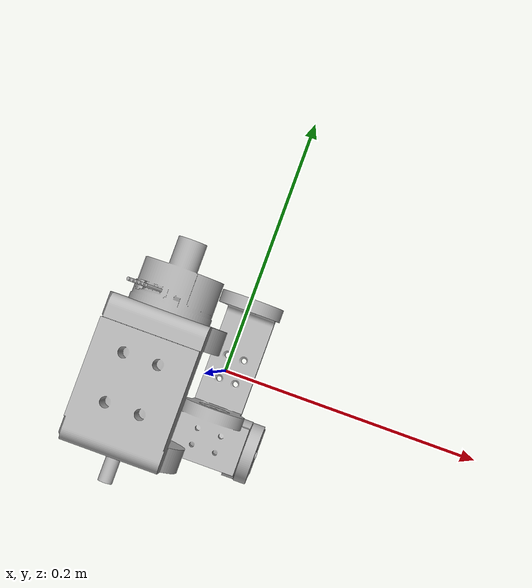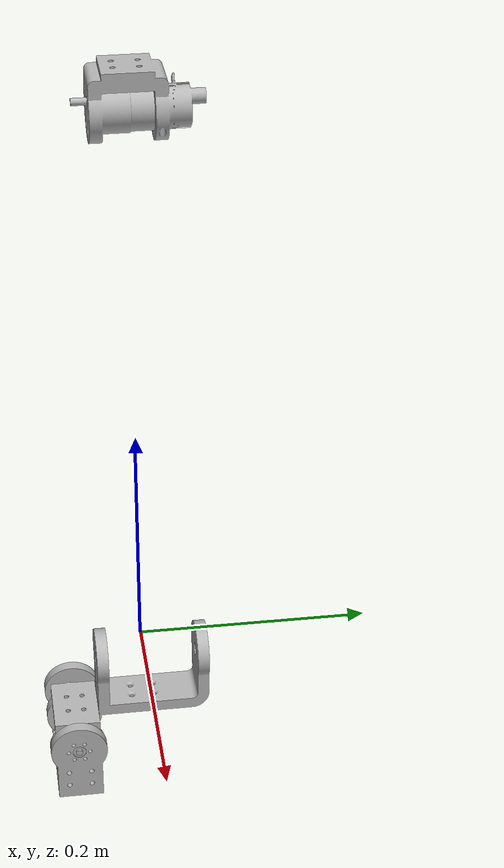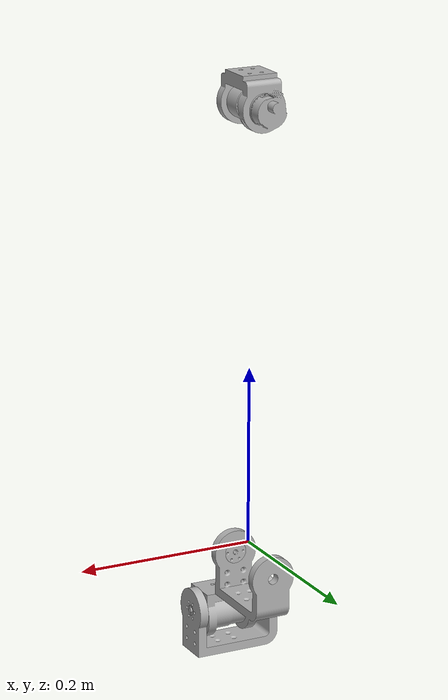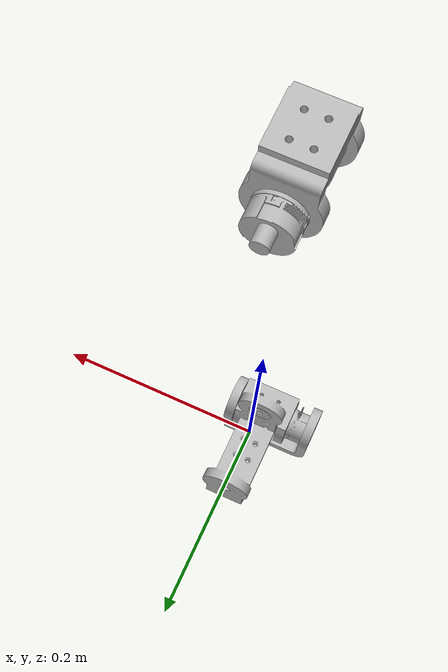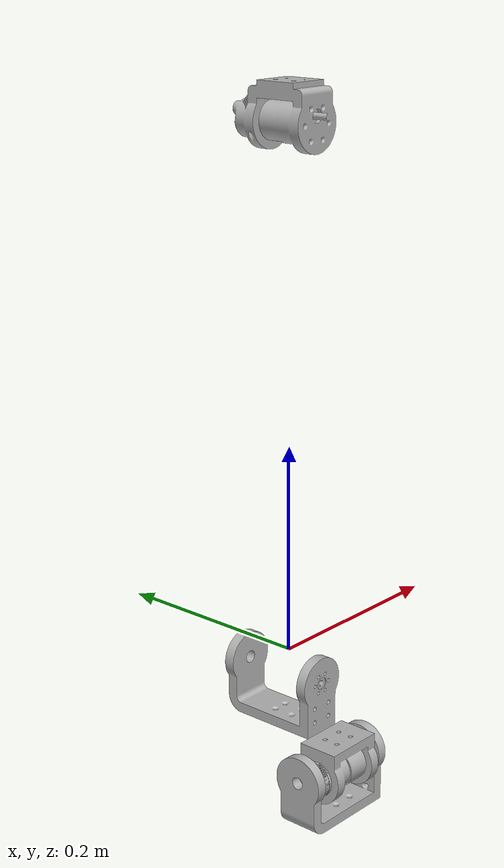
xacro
<?xml version="1.0" ?>
<robot name="test" xmlns:xacro="http://www.ros.org/wiki/xacro">

<xacro:include filename="$(find test_description)/urdf/materials.xacro" />
<xacro:include filename="$(find test_description)/urdf/test.trans" />
<xacro:include filename="$(find test_description)/urdf/test.gazebo" />
<link name="base_link">
  <inertial>
    <origin rpy="0 0 0" xyz="-2.7174602321866267e-05 0.006053798965408933 -0.028185037843435335"/>
    <mass value="0.512530898807761"/>
    <inertia ixx="0.000232" ixy="0.0" ixz="0.0" iyy="0.000107" iyz="6e-06" izz="0.000214"/>
  </inertial>
  <visual>
    <origin rpy="0 0 0" xyz="0 0 0"/>
    <geometry>
      <mesh filename="package://test_description/meshes/base_link.stl" scale="0.001 0.001 0.001"/>
    </geometry>
    <material name="silver_default"/>
  </visual>
  <collision>
    <origin rpy="0 0 0" xyz="0 0 0"/>
    <geometry>
      <mesh filename="package://test_description/meshes/base_link.stl" scale="0.001 0.001 0.001"/>
    </geometry>
  </collision>
</link>

<link name="joint_v3_1">
  <inertial>
    <origin rpy="0 0 0" xyz="1.4411208065837877e-06 0.00807980536145679 0.00018129790863231562"/>
    <mass value="0.006810016850259386"/>
    <inertia ixx="0.0" ixy="0.0" ixz="0.0" iyy="1e-06" iyz="0.0" izz="0.0"/>
  </inertial>
  <visual>
    <origin rpy="0 0 0" xyz="0.0 0.042 0.023"/>
    <geometry>
      <mesh filename="package://test_description/meshes/joint_v3_1.stl" scale="0.001 0.001 0.001"/>
    </geometry>
    <material name="silver_default"/>
  </visual>
  <collision>
    <origin rpy="0 0 0" xyz="0.0 0.042 0.023"/>
    <geometry>
      <mesh filename="package://test_description/meshes/joint_v3_1.stl" scale="0.001 0.001 0.001"/>
    </geometry>
  </collision>
</link>

<link name="link1_1">
  <inertial>
    <origin rpy="0 0 0" xyz="-0.007153184140692447 -0.015030750399978032 -0.07177411362841968"/>
    <mass value="0.6370785777172516"/>
    <inertia ixx="0.000916" ixy="-4.6e-05" ixz="-5e-05" iyy="0.000564" iyz="-0.000305" izz="0.000784"/>
  </inertial>
  <visual>
    <origin rpy="0 0 0" xyz="0.0 0.0358 0.023"/>
    <geometry>
      <mesh filename="package://test_description/meshes/link1_1.stl" scale="0.001 0.001 0.001"/>
    </geometry>
    <material name="silver_default"/>
  </visual>
  <collision>
    <origin rpy="0 0 0" xyz="0.0 0.0358 0.023"/>
    <geometry>
      <mesh filename="package://test_description/meshes/link1_1.stl" scale="0.001 0.001 0.001"/>
    </geometry>
  </collision>
</link>

<link name="joint_v3_2">
  <inertial>
    <origin rpy="0 0 0" xyz="-0.008079805361456922 1.441120806640328e-06 0.0001812979086323191"/>
    <mass value="0.006810016850259386"/>
    <inertia ixx="1e-06" ixy="-0.0" ixz="-0.0" iyy="0.0" iyz="0.0" izz="0.0"/>
  </inertial>
  <visual>
    <origin rpy="0 0 0" xyz="-0.042 0.0608 0.096"/>
    <geometry>
      <mesh filename="package://test_description/meshes/joint_v3_2.stl" scale="0.001 0.001 0.001"/>
    </geometry>
    <material name="silver_default"/>
  </visual>
  <collision>
    <origin rpy="0 0 0" xyz="-0.042 0.0608 0.096"/>
    <geometry>
      <mesh filename="package://test_description/meshes/joint_v3_2.stl" scale="0.001 0.001 0.001"/>
    </geometry>
  </collision>
</link>

<link name="link2_1">
  <inertial>
    <origin rpy="0 0 0" xyz="-0.04510886187828334 -2.848415947553917e-14 -0.024411604803811632"/>
    <mass value="0.09077100718883686"/>
    <inertia ixx="6e-05" ixy="0.0" ixz="4e-06" iyy="0.000179" iyz="0.0" izz="0.000147"/>
  </inertial>
  <visual>
    <origin rpy="0 0 0" xyz="-0.0358 0.0608 0.096"/>
    <geometry>
      <mesh filename="package://test_description/meshes/link2_1.stl" scale="0.001 0.001 0.001"/>
    </geometry>
    <material name="silver_default"/>
  </visual>
  <collision>
    <origin rpy="0 0 0" xyz="-0.0358 0.0608 0.096"/>
    <geometry>
      <mesh filename="package://test_description/meshes/link2_1.stl" scale="0.001 0.001 0.001"/>
    </geometry>
  </collision>
</link>

<joint name="Rev7" type="continuous">
  <origin rpy="0 0 0" xyz="0.0 -0.042 -0.023"/>
  <parent link="base_link"/>
  <child link="joint_v3_1"/>
  <axis xyz="0.0 -1.0 -0.0"/>
</joint>

<joint name="Rigid8" type="fixed">
  <origin rpy="0 0 0" xyz="0.0 0.0062 0.0"/>
  <parent link="joint_v3_1"/>
  <child link="link1_1"/>
</joint>

<joint name="Rev9" type="continuous">
  <origin rpy="0 0 0" xyz="0.042 -0.025 -0.073"/>
  <parent link="link1_1"/>
  <child link="joint_v3_2"/>
  <axis xyz="1.0 -0.0 -0.0"/>
</joint>

<joint name="Rigid10" type="fixed">
  <origin rpy="0 0 0" xyz="-0.0062 0.0 0.0"/>
  <parent link="joint_v3_2"/>
  <child link="link2_1"/>
</joint>

</robot>

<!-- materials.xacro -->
<robot name="test" xmlns:xacro="http://www.ros.org/wiki/xacro" >

<material name="silver_default">
  <color rgba="0.700 0.700 0.700 1.000"/>
</material>

</robot>

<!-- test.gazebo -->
<robot name="test" xmlns:xacro="http://www.ros.org/wiki/xacro" >

<xacro:property name="body_color" value="Gazebo/Silver" />

<gazebo>
  <plugin filename="libgazebo_ros_control.so" name="control"/>
</gazebo>
<gazebo reference="base_link">
  <material>${body_color}</material>
  <mu1>0.2</mu1>
  <mu2>0.2</mu2>
  <selfCollide>true</selfCollide>
  <gravity>true</gravity>
</gazebo>

<gazebo reference="joint_v3_1">
  <material>${body_color}</material>
  <mu1>0.2</mu1>
  <mu2>0.2</mu2>
  <selfCollide>true</selfCollide>
</gazebo>

<gazebo reference="link1_1">
  <material>${body_color}</material>
  <mu1>0.2</mu1>
  <mu2>0.2</mu2>
  <selfCollide>true</selfCollide>
</gazebo>

<gazebo reference="joint_v3_2">
  <material>${body_color}</material>
  <mu1>0.2</mu1>
  <mu2>0.2</mu2>
  <selfCollide>true</selfCollide>
</gazebo>

<gazebo reference="link2_1">
  <material>${body_color}</material>
  <mu1>0.2</mu1>
  <mu2>0.2</mu2>
  <selfCollide>true</selfCollide>
</gazebo>

</robot>
